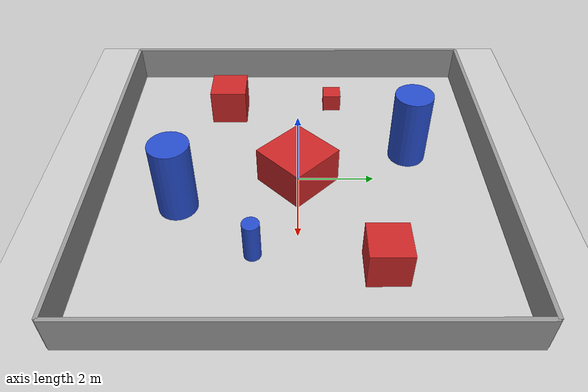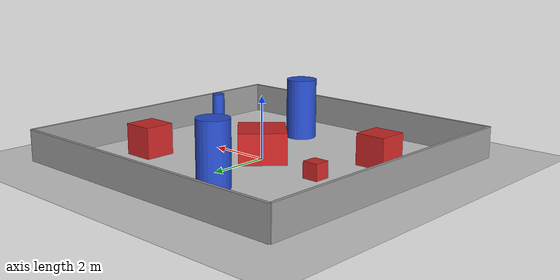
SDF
<?xml version="1.0" ?>
<sdf version="1.6">
  <world name="default">

    <include>
      <uri>model://ground_plane</uri>
    </include>

    <include>
      <uri>model://sun</uri>
    </include>

    <model name="wall_north">
      <pose>0 5 0.5 0 0 0</pose>
      <static>true</static>
      <link name="link">
        <collision name="collision"><geometry><box><size>10.0 0.1 1.0</size></box></geometry></collision>
        <visual name="visual"><geometry><box><size>10.0 0.1 1.0</size></box></geometry>
          <material>
            <script><uri>file://media/materials/scripts/gazebo.material</uri><name>Gazebo/Grey</name></script>
          </material>
        </visual>
      </link>
    </model>

    <model name="wall_south">
      <pose>0 -5 0.5 0 0 0</pose>
      <static>true</static>
      <link name="link">
        <collision name="collision"><geometry><box><size>10.0 0.1 1.0</size></box></geometry></collision>
        <visual name="visual"><geometry><box><size>10.0 0.1 1.0</size></box></geometry>
          <material>
            <script><uri>file://media/materials/scripts/gazebo.material</uri><name>Gazebo/Grey</name></script>
          </material>
        </visual>
      </link>
    </model>

    <model name="wall_east">
      <pose>5 0 0.5 0 0 0</pose>
      <static>true</static>
      <link name="link">
        <collision name="collision"><geometry><box><size>0.1 10.0 1.0</size></box></geometry></collision>
        <visual name="visual"><geometry><box><size>0.1 10.0 1.0</size></box></geometry>
          <material>
            <script><uri>file://media/materials/scripts/gazebo.material</uri><name>Gazebo/Grey</name></script>
          </material>
        </visual>
      </link>
    </model>

    <model name="wall_west">
      <pose>-5 0 0.5 0 0 0</pose>
      <static>true</static>
      <link name="link">
        <collision name="collision"><geometry><box><size>0.1 10.0 1.0</size></box></geometry></collision>
        <visual name="visual"><geometry><box><size>0.1 10.0 1.0</size></box></geometry>
          <material>
            <script><uri>file://media/materials/scripts/gazebo.material</uri><name>Gazebo/Grey</name></script>
          </material>
        </visual>
      </link>
    </model>

    <model name="obstacle_box_1">
      <pose>3.0 2.0 0.5 0 0 0</pose>
      <static>true</static>
      <link name="link">
        <collision name="collision"><geometry><box><size>1.0 1.0 1.0</size></box></geometry></collision>
        <visual name="visual"><geometry><box><size>1.0 1.0 1.0</size></box></geometry>
          <material>
            <script><uri>file://media/materials/scripts/gazebo.material</uri><name>Gazebo/Red</name></script>
          </material>
        </visual>
      </link>
    </model>

    <model name="obstacle_cylinder_1">
      <pose>-1.0 3.0 1.0 0 0 0</pose>
      <static>true</static>
      <link name="link">
        <collision name="collision"><geometry><cylinder><radius>0.5</radius><length>2.0</length></cylinder></geometry></collision>
        <visual name="visual"><geometry><cylinder><radius>0.5</radius><length>2.0</length></cylinder></geometry>
          <material>
            <script><uri>file://media/materials/scripts/gazebo.material</uri><name>Gazebo/Blue</name></script>
          </material>
        </visual>
      </link>
    </model>

    <model name="obstacle_box_2">
      <pose>-3.0 -2.0 0.5 0 0 0</pose>
      <static>true</static>
      <link name="link">
        <collision name="collision"><geometry><box><size>1.0 1.0 1.0</size></box></geometry></collision>
        <visual name="visual"><geometry><box><size>1.0 1.0 1.0</size></box></geometry>
          <material>
            <script><uri>file://media/materials/scripts/gazebo.material</uri><name>Gazebo/Red</name></script>
          </material>
        </visual>
      </link>
    </model>

    <model name="obstacle_cylinder_2">
      <pose>1.0 -3.0 1.0 0 0 0</pose>
      <static>true</static>
      <link name="link">
        <collision name="collision"><geometry><cylinder><radius>0.5</radius><length>2.0</length></cylinder></geometry></collision>
        <visual name="visual"><geometry><cylinder><radius>0.5</radius><length>2.0</length></cylinder></geometry>
          <material>
            <script><uri>file://media/materials/scripts/gazebo.material</uri><name>Gazebo/Blue</name></script>
          </material>
        </visual>
      </link>
    </model>

    <model name="obstacle_box_3">
      <pose>-3.0 1.0 0.5 0 0 0</pose>
      <static>true</static>
      <link name="link">
        <collision name="collision"><geometry><box><size>0.5 0.5 0.5</size></box></geometry></collision>
        <visual name="visual"><geometry><box><size>0.5 0.5 0.5</size></box></geometry>
          <material>
            <script><uri>file://media/materials/scripts/gazebo.material</uri><name>Gazebo/Red</name></script>
          </material>
        </visual>
      </link>
    </model>

    <model name="obstacle_cylinder_3">
      <pose>3.0 -1.0 1.0 0 0 0</pose>
      <static>true</static>
      <link name="link">
        <collision name="collision"><geometry><cylinder><radius>0.2</radius><length>1.0</length></cylinder></geometry></collision>
        <visual name="visual"><geometry><cylinder><radius>0.2</radius><length>1.0</length></cylinder></geometry>
          <material>
            <script><uri>file://media/materials/scripts/gazebo.material</uri><name>Gazebo/Blue</name></script>
          </material>
        </visual>
      </link>
    </model>

    <model name="obstacle_box_4">
      <pose>0.0 0.0 0.5 0 0 0.785</pose>
      <static>true</static>
      <link name="link">
        <collision name="collision"><geometry><box><size>1.5 1.5 1.0</size></box></geometry></collision>
        <visual name="visual"><geometry><box><size>1.5 1.5 1.0</size></box></geometry>
          <material>
            <script><uri>file://media/materials/scripts/gazebo.material</uri><name>Gazebo/Red</name></script>
          </material>
        </visual>
      </link>
    </model>

  </world>
</sdf>
